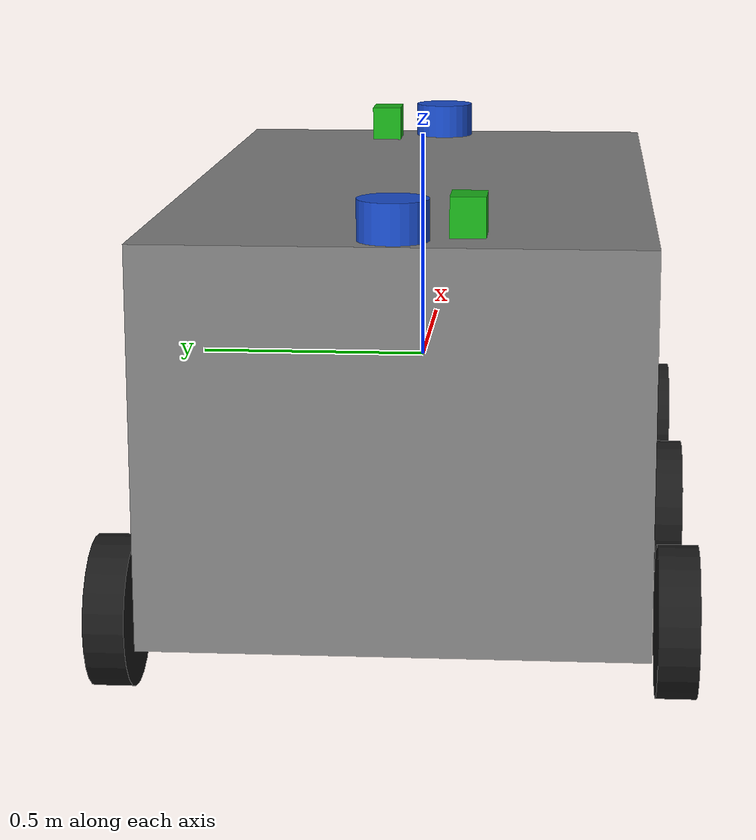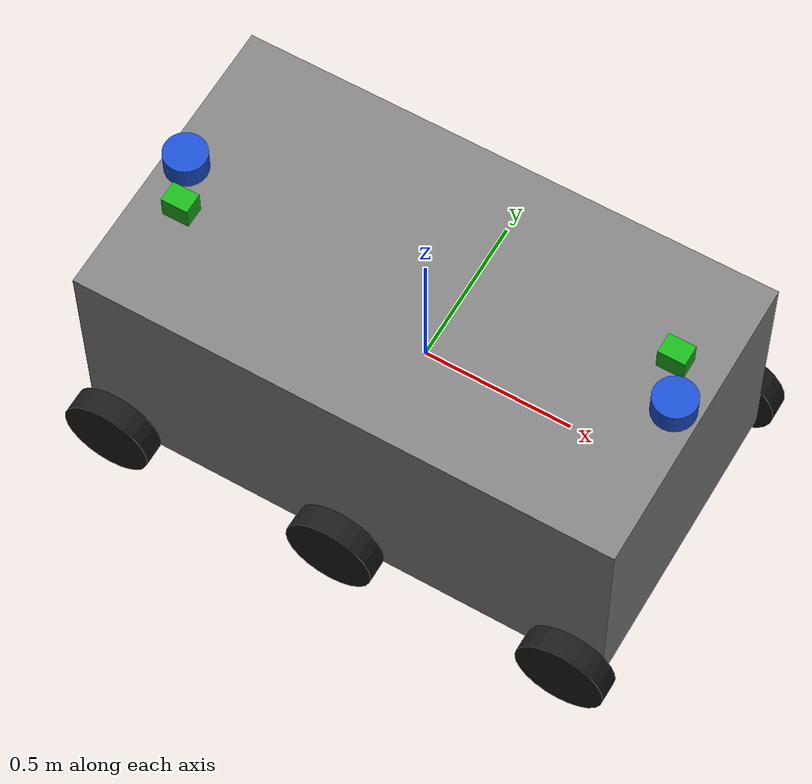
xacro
<?xml version="1.0"?>
<robot xmlns:xacro="http://ros.org/wiki/xacro" name="ugv_gazebo">

  <!-- Include your pure robot description -->
  <xacro:include filename="$(find ugv_description)/urdf/ugv.xacro"/>
  <xacro:ugv />

  <gazebo reference="base_link">
    <plugin name="diff_drive_controller" filename="libgazebo_ros_diff_drive.so">
      <update_rate>50</update_rate>
      <left_joint>joint_wheel_left_0</left_joint>
      <right_joint>joint_wheel_right_0</right_joint>
      <wheel_separation>0.9</wheel_separation>
      <wheel_diameter>0.2</wheel_diameter>
      <publish_odom>true</publish_odom>
      <publish_odom_tf>true</publish_odom_tf>
      <publish_wheel_tf>true</publish_wheel_tf>
      <odometry_topic>odom</odometry_topic>
      <odometry_frame>odom</odometry_frame>
      <robot_base_frame>base_footprint</robot_base_frame>
    </plugin>
  </gazebo>

  <gazebo reference="lidar_front">
    <sensor name="front_lidar_sensor" type="gpu_ray">
      <pose>0 0 0 0 0 0</pose>
      <visualize>true</visualize>
      <update_rate>10.0</update_rate>
      <ray>
        <scan>
          <horizontal>
            <samples>720</samples>
            <resolution>1</resolution>
            <min_angle>-1.047</min_angle>
            <max_angle>1.047</max_angle>
          </horizontal>
        </scan>
        <range>
          <min>0.1</min>
          <max>10.0</max>
          <resolution>0.01</resolution>
        </range>
        <noise>
          <type>gaussian</type>
          <mean>0.0</mean>
          <stddev>0.01</stddev>
        </noise>
      </ray>
      <plugin name="front_lidar_plugin" filename="libgazebo_ros_ray_sensor.so">
        <topicName>/lidar_front/scan</topicName>
        <frameName>lidar_front</frameName>
        <update_rate>10.0</update_rate>
      </plugin>
    </sensor>
  </gazebo>

  <gazebo reference="lidar_back">
    <sensor name="rear_lidar_sensor" type="gpu_ray">
      <pose>0 0 0 0 0 0</pose>
      <visualize>true</visualize>
      <update_rate>10.0</update_rate>
      <ray>
        <scan>
          <horizontal>
            <samples>720</samples>
            <resolution>1</resolution>
            <min_angle>-1.047</min_angle>
            <max_angle>1.047</max_angle>
          </horizontal>
        </scan>
        <range>
          <min>0.1</min>
          <max>10.0</max>
          <resolution>0.01</resolution>
        </range>
        <noise>
          <type>gaussian</type>
          <mean>0.0</mean>
          <stddev>0.01</stddev>
        </noise>
      </ray>
      <plugin name="rear_lidar_plugin" filename="libgazebo_ros_ray_sensor.so">
        <topicName>/lidar_back/scan</topicName>
        <frameName>lidar_back</frameName>
        <update_rate>10.0</update_rate>
      </plugin>
    </sensor>
  </gazebo>

  <gazebo reference="camera_front">
    <sensor name="camera_sensor_front" type="camera">
      <pose>0 0 0 0 0 0</pose>
      <visualize>true</visualize>
      <update_rate>10.0</update_rate>
      <plugin name="camera_controller_front" filename="libgazebo_ros_camera.so">
        <frame_name>camera_front</frame_name>
        <image_topic_name>/camera_front/image_raw</image_topic_name>
      </plugin>
    </sensor>
  </gazebo>

  <gazebo reference="camera_back">
    <sensor name="camera_sensor_back" type="camera">
      <pose>0 0 0 0 0 0</pose>
      <visualize>true</visualize>
      <update_rate>10.0</update_rate>
      <plugin name="camera_controller_back" filename="libgazebo_ros_camera.so">
        <frame_name>camera_back</frame_name>
        <image_topic_name>/camera_back/image_raw</image_topic_name>
      </plugin>
    </sensor>
  </gazebo>

</robot>

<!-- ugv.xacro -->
<robot xmlns:xacro="http://www.ros.org/wiki/xacro" name="ugv">
    <xacro:macro name="ugv">

      <xacro:macro name="wheel_link" params="name">
        <link name="${name}">
          <visual>
            <geometry>
              <cylinder radius="0.15" length="0.08"/>
            </geometry>
            <origin xyz="0 0 0" rpy="0 1.5708 0"/>
            <material name="Black">
              <color rgba="0.1 0.1 0.1 1"/>
            </material>
          </visual>
          <collision>
            <geometry>
              <cylinder radius="0.15" length="0.08"/>
            </geometry>
            <origin xyz="0 0 0" rpy="0 1.5708 0"/>
          </collision>
          <inertial>
            <mass value="5"/>
            <origin xyz="0 0 0"/>
            <inertia ixx="0.1" iyy="0.1" izz="0.2" ixy="0" ixz="0" iyz="0"/>
          </inertial>
        </link>
      </xacro:macro>

      <link name="base_footprint" />

      <link name="base_link">
        <visual>
          <geometry>
            <box size="1.8 1.0 0.8"/>
          </geometry>
          <material name="ChassisColor">
            <color rgba="0.5 0.5 0.5 1"/>
          </material>
        </visual>
        <collision>
          <geometry>
            <box size="1.8 1.0 0.8"/>
          </geometry>
        </collision>
        <inertial>
          <mass value="120"/>
          <origin xyz="0 0 0"/>
          <inertia ixx="12" iyy="12" izz="20" ixy="0" ixz="0" iyz="0"/>
        </inertial>
      </link>

      <xacro:wheel_link name="wheel_left_0"/>
      <xacro:wheel_link name="wheel_left_1"/>
      <xacro:wheel_link name="wheel_left_2"/>
      <xacro:wheel_link name="wheel_right_0"/>
      <xacro:wheel_link name="wheel_right_1"/>
      <xacro:wheel_link name="wheel_right_2"/>

      <link name="lidar_front">
        <visual>
          <geometry>
            <cylinder radius="0.07" length="0.08"/>
          </geometry>
          <material name="Blue">
            <color rgba="0.1 0.3 0.8 1"/>
          </material>
        </visual>
        <collision>
          <geometry>
            <cylinder radius="0.07" length="0.08"/>
          </geometry>
        </collision>
        <inertial>
          <mass value="0.1"/>
          <origin xyz="0 0 0"/>
          <inertia ixx="1e-5" iyy="1e-5" izz="1e-5" ixy="0" ixz="0" iyz="0"/>
        </inertial>
      </link>

      <link name="lidar_back">
        <visual>
          <geometry>
            <cylinder radius="0.07" length="0.08"/>
          </geometry>
          <material name="Blue">
            <color rgba="0.1 0.3 0.8 1"/>
          </material>
        </visual>
        <collision>
          <geometry>
            <cylinder radius="0.07" length="0.08"/>
          </geometry>
        </collision>
        <inertial>
          <mass value="0.1"/>
          <origin xyz="0 0 0"/>
          <inertia ixx="1e-5" iyy="1e-5" izz="1e-5" ixy="0" ixz="0" iyz="0"/>
        </inertial>
      </link>

      <link name="camera_front">
        <visual>
          <geometry>
            <box size="0.09 0.07 0.08"/>
          </geometry>
          <material name="Green">
            <color rgba="0.1 0.7 0.1 1"/>
          </material>
        </visual>
      </link>

      <link name="camera_back">
        <visual>
          <geometry>
            <box size="0.09 0.07 0.08"/>
          </geometry>
          <material name="Green">
            <color rgba="0.1 0.7 0.1 1"/>
          </material>
        </visual>
      </link>

      <joint name="base_joint" type="fixed">
        <parent link="base_footprint"/>
        <child link="base_link"/>
        <origin xyz="0 0 0" rpy="0 0 0"/>
      </joint>

      <joint name="joint_wheel_left_0" type="continuous">
        <parent link="base_link"/>
        <child link="wheel_left_0"/>
        <origin xyz="-0.8 -0.55 -0.35" rpy="0 0 1.57"/>
        <axis xyz="1 0 0"/>
      </joint>
      <joint name="joint_wheel_left_1" type="continuous">
        <parent link="base_link"/>
        <child link="wheel_left_1"/>
        <origin xyz="0 -0.55 -0.35" rpy="0 0 1.57"/>
        <axis xyz="1 0 0"/>
      </joint>
      <joint name="joint_wheel_left_2" type="continuous">
        <parent link="base_link"/>
        <child link="wheel_left_2"/>
        <origin xyz="0.8 -0.55 -0.35" rpy="0 0 1.57"/>
        <axis xyz="1 0 0"/>
      </joint>
      <joint name="joint_wheel_right_0" type="continuous">
        <parent link="base_link"/>
        <child link="wheel_right_0"/>
        <origin xyz="0.8 0.55 -0.35" rpy="0 0 1.57"/>
        <axis xyz="1 0 0"/>
      </joint>
      <joint name="joint_wheel_right_1" type="continuous">
        <parent link="base_link"/>
        <child link="wheel_right_1"/>
        <origin xyz="0 0.55 -0.35" rpy="0 0 1.57"/>
        <axis xyz="1 0 0"/>
      </joint>
      <joint name="joint_wheel_right_2" type="continuous">
        <parent link="base_link"/>
        <child link="wheel_right_2"/>
        <origin xyz="-0.8 0.55 -0.35" rpy="0 0 1.57"/>
        <axis xyz="1 0 0"/>
      </joint>

      <joint name="joint_lidar_front" type="fixed">
        <parent link="base_link"/>
        <child link="lidar_front"/>
        <origin xyz="0.82 0 0.44" rpy="0 0 0"/>
      </joint>

      <joint name="joint_lidar_back" type="fixed">
        <parent link="base_link"/>
        <child link="lidar_back"/>
        <origin xyz="-0.82 0 0.44" rpy="0 0 3.14159"/>
      </joint>

      <joint name="joint_camera_front" type="fixed">
        <parent link="base_link"/>
        <child link="camera_front"/>
        <origin xyz="0.75 0.14 0.44" rpy="0 0 0"/>
      </joint>

      <joint name="joint_camera_back" type="fixed">
        <parent link="base_link"/>
        <child link="camera_back"/>
        <origin xyz="-0.75 -0.14 0.44" rpy="0 0 3.14159"/>
      </joint>

    </xacro:macro>

</robot>
